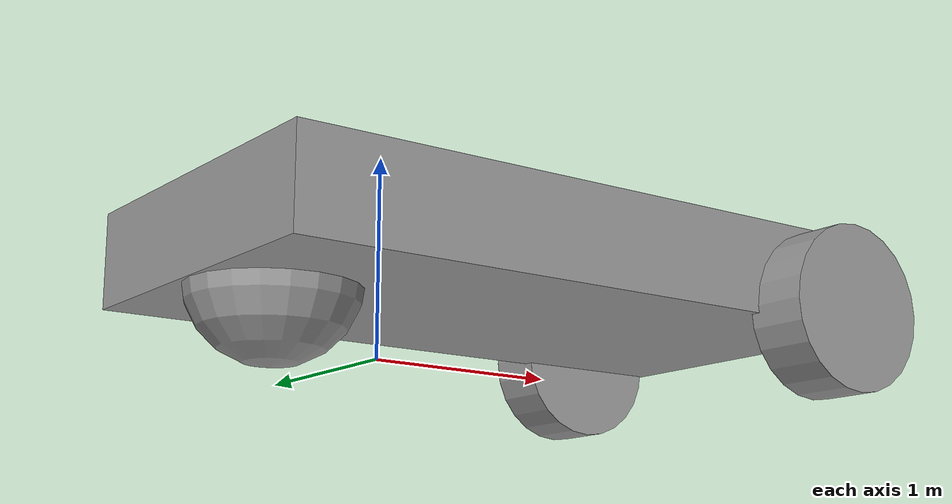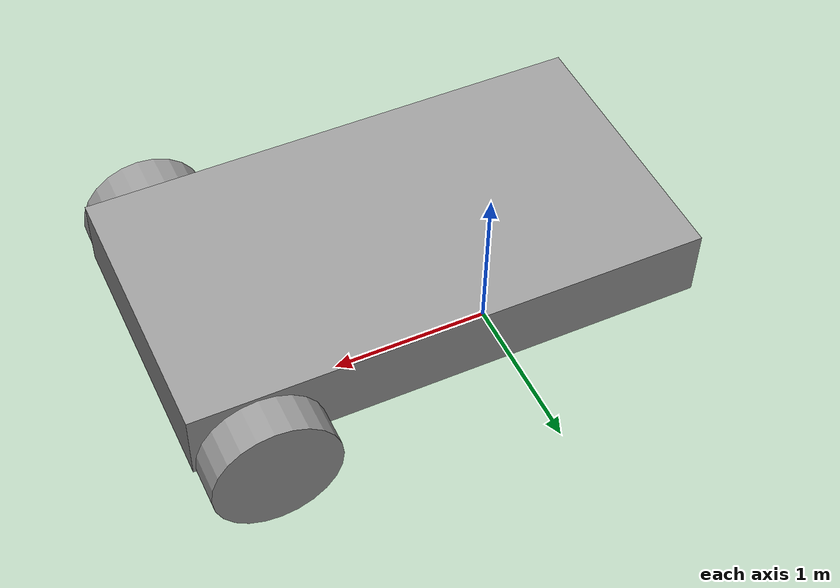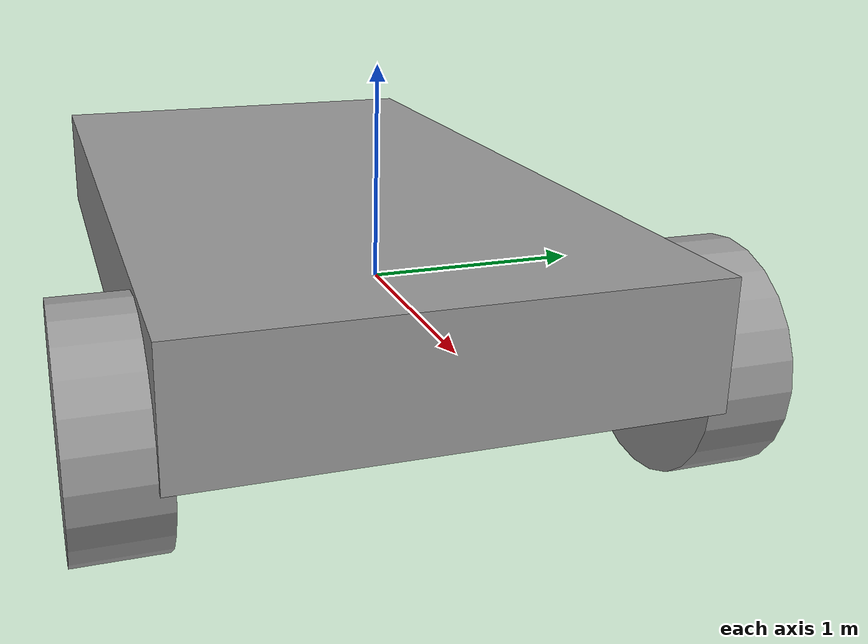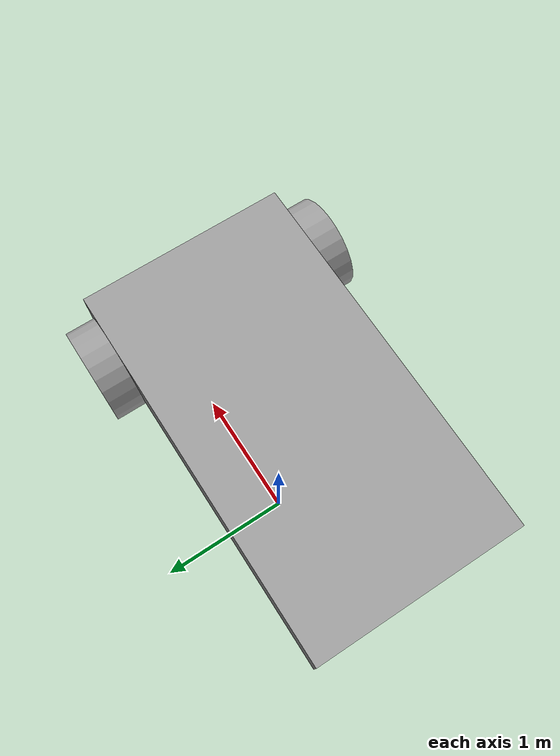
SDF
<?xml version='1.0'?>
<sdf version='1.6'>
  <model name='vehicle'>
    <link name='link_0'>
      <pose frame=''>0.442879 -0.41526 0.4 1.4e-05 -0 -2e-06</pose>
      <inertial>
        <mass>2.62404</mass>
        <inertia>
          <ixx>0.732575</ixx>
          <ixy>0</ixy>
          <ixz>0</ixz>
          <iyy>2.36995</iyy>
          <iyz>0</iyz>
          <izz>3.01245</izz>
        </inertia>
        <pose frame=''>0 0 0 0 -0 0</pose>
      </inertial>
      <gravity>1</gravity>
      <self_collide>0</self_collide>
      <kinematic>0</kinematic>
      <visual name='visual'>
        <pose frame=''>0 0 0 0 -0 0</pose>
        <geometry>
          <box>
            <size>3.26071 1.77323 0.453831</size>
          </box>
        </geometry>
        <material>
          <lighting>1</lighting>
          <script>
            <uri>file://media/materials/scripts/gazebo.material</uri>
            <name>Gazebo/Grey</name>
          </script>
          <ambient>0.3 0.3 0.3 1</ambient>
          <diffuse>0.7 0.7 0.7 1</diffuse>
          <specular>0.01 0.01 0.01 1</specular>
          <emissive>0 0 0 1</emissive>
          <shader type='vertex'>
            <normal_map>__default__</normal_map>
          </shader>
        </material>
        <cast_shadows>1</cast_shadows>
        <transparency>0</transparency>
      </visual>
      <collision name='collision'>
        <laser_retro>0</laser_retro>
        <max_contacts>10</max_contacts>
        <pose frame=''>0 0 0 0 -0 0</pose>
        <geometry>
          <box>
            <size>3.26071 1.77323 0.453831</size>
          </box>
        </geometry>
        <surface>
          <friction>
            <ode>
              <mu>1</mu>
              <mu2>1</mu2>
              <fdir1>0 0 0</fdir1>
              <slip1>0</slip1>
              <slip2>0</slip2>
            </ode>
            <torsional>
              <coefficient>1</coefficient>
              <patch_radius>0</patch_radius>
              <surface_radius>0</surface_radius>
              <use_patch_radius>1</use_patch_radius>
              <ode>
                <slip>0</slip>
              </ode>
            </torsional>
          </friction>
          <bounce>
            <restitution_coefficient>0</restitution_coefficient>
            <threshold>1e+06</threshold>
          </bounce>
          <contact>
            <collide_without_contact>0</collide_without_contact>
            <collide_without_contact_bitmask>1</collide_without_contact_bitmask>
            <collide_bitmask>1</collide_bitmask>
            <ode>
              <soft_cfm>0</soft_cfm>
              <soft_erp>0.2</soft_erp>
              <kp>1e+13</kp>
              <kd>1</kd>
              <max_vel>0.01</max_vel>
              <min_depth>0</min_depth>
            </ode>
            <bullet>
              <split_impulse>1</split_impulse>
              <split_impulse_penetration_threshold>-0.01</split_impulse_penetration_threshold>
              <soft_cfm>0</soft_cfm>
              <soft_erp>0.2</soft_erp>
              <kp>1e+13</kp>
              <kd>1</kd>
            </bullet>
          </contact>
        </surface>
      </collision>
    </link>
    <link name='link_1_clone'>
      <pose frame=''>1.65585 -1.40537 0.206219 1.57071 -0 -4e-06</pose>
      <inertial>
        <mass>0.144244</mass>
        <inertia>
          <ixx>0.00679725</ixx>
          <ixy>0</ixy>
          <ixz>0</ixz>
          <iyy>0.00679725</iyy>
          <iyz>0</iyz>
          <izz>0.0125644</izz>
        </inertia>
        <pose frame=''>0 0 0 0 -0 0</pose>
      </inertial>
      <self_collide>0</self_collide>
      <kinematic>0</kinematic>
      <gravity>1</gravity>
      <visual name='visual'>
        <pose frame=''>0 0 0 0 -0 0</pose>
        <geometry>
          <cylinder>
            <radius>0.4</radius>
            <length>0.3</length>
          </cylinder>
        </geometry>
        <material>
          <lighting>1</lighting>
          <script>
            <uri>file://media/materials/scripts/gazebo.material</uri>
            <name>Gazebo/Grey</name>
          </script>
          <ambient>0.3 0.3 0.3 1</ambient>
          <diffuse>0.7 0.7 0.7 1</diffuse>
          <specular>0.01 0.01 0.01 1</specular>
          <emissive>0 0 0 1</emissive>
          <shader type='vertex'>
            <normal_map>__default__</normal_map>
          </shader>
        </material>
        <cast_shadows>1</cast_shadows>
        <transparency>0</transparency>
      </visual>
      <collision name='collision'>
        <laser_retro>0</laser_retro>
        <max_contacts>10</max_contacts>
        <pose frame=''>0 0 0 0 -0 0</pose>
        <geometry>
          <cylinder>
            <radius>0.4</radius>
            <length>0.3</length>
          </cylinder>
        </geometry>
        <surface>
          <friction>
            <ode>
              <mu>1</mu>
              <mu2>1</mu2>
              <fdir1>0 0 0</fdir1>
              <slip1>0</slip1>
              <slip2>0</slip2>
            </ode>
            <torsional>
              <coefficient>1</coefficient>
              <patch_radius>0</patch_radius>
              <surface_radius>0</surface_radius>
              <use_patch_radius>1</use_patch_radius>
              <ode>
                <slip>0</slip>
              </ode>
            </torsional>
          </friction>
          <bounce>
            <restitution_coefficient>0</restitution_coefficient>
            <threshold>1e+06</threshold>
          </bounce>
          <contact>
            <collide_without_contact>0</collide_without_contact>
            <collide_without_contact_bitmask>1</collide_without_contact_bitmask>
            <collide_bitmask>1</collide_bitmask>
            <ode>
              <soft_cfm>0</soft_cfm>
              <soft_erp>0.2</soft_erp>
              <kp>1e+13</kp>
              <kd>1</kd>
              <max_vel>0.01</max_vel>
              <min_depth>0</min_depth>
            </ode>
            <bullet>
              <split_impulse>1</split_impulse>
              <split_impulse_penetration_threshold>-0.01</split_impulse_penetration_threshold>
              <soft_cfm>0</soft_cfm>
              <soft_erp>0.2</soft_erp>
              <kp>1e+13</kp>
              <kd>1</kd>
            </bullet>
          </contact>
        </surface>
      </collision>
    </link>
    <link name='link_1_clone_clone'>
      <pose frame=''>1.65585 0.574845 0.206213 1.57072 0 -6e-06</pose>
      <inertial>
        <mass>0.144244</mass>
        <inertia>
          <ixx>0.00679725</ixx>
          <ixy>0</ixy>
          <ixz>0</ixz>
          <iyy>0.00679725</iyy>
          <iyz>0</iyz>
          <izz>0.0125644</izz>
        </inertia>
        <pose frame=''>0 0 0 0 -0 0</pose>
      </inertial>
      <self_collide>0</self_collide>
      <kinematic>0</kinematic>
      <gravity>1</gravity>
      <visual name='visual'>
        <pose frame=''>0 0 0 0 -0 0</pose>
        <geometry>
          <cylinder>
            <radius>0.4</radius>
            <length>0.3</length>
          </cylinder>
        </geometry>
        <material>
          <lighting>1</lighting>
          <script>
            <uri>file://media/materials/scripts/gazebo.material</uri>
            <name>Gazebo/Grey</name>
          </script>
          <ambient>0.3 0.3 0.3 1</ambient>
          <diffuse>0.7 0.7 0.7 1</diffuse>
          <specular>0.01 0.01 0.01 1</specular>
          <emissive>0 0 0 1</emissive>
          <shader type='vertex'>
            <normal_map>__default__</normal_map>
          </shader>
        </material>
        <cast_shadows>1</cast_shadows>
        <transparency>0</transparency>
      </visual>
      <collision name='collision'>
        <laser_retro>0</laser_retro>
        <max_contacts>10</max_contacts>
        <pose frame=''>0 0 0 0 -0 0</pose>
        <geometry>
          <cylinder>
            <radius>0.4</radius>
            <length>0.3</length>
          </cylinder>
        </geometry>
        <surface>
          <friction>
            <ode>
              <mu>1</mu>
              <mu2>1</mu2>
              <fdir1>0 0 0</fdir1>
              <slip1>0</slip1>
              <slip2>0</slip2>
            </ode>
            <torsional>
              <coefficient>1</coefficient>
              <patch_radius>0</patch_radius>
              <surface_radius>0</surface_radius>
              <use_patch_radius>1</use_patch_radius>
              <ode>
                <slip>0</slip>
              </ode>
            </torsional>
          </friction>
          <bounce>
            <restitution_coefficient>0</restitution_coefficient>
            <threshold>1e+06</threshold>
          </bounce>
          <contact>
            <collide_without_contact>0</collide_without_contact>
            <collide_without_contact_bitmask>1</collide_without_contact_bitmask>
            <collide_bitmask>1</collide_bitmask>
            <ode>
              <soft_cfm>0</soft_cfm>
              <soft_erp>0.2</soft_erp>
              <kp>1e+13</kp>
              <kd>1</kd>
              <max_vel>0.01</max_vel>
              <min_depth>0</min_depth>
            </ode>
            <bullet>
              <split_impulse>1</split_impulse>
              <split_impulse_penetration_threshold>-0.01</split_impulse_penetration_threshold>
              <soft_cfm>0</soft_cfm>
              <soft_erp>0.2</soft_erp>
              <kp>1e+13</kp>
              <kd>1</kd>
            </bullet>
          </contact>
        </surface>
      </collision>
    </link>
    <link name='link_2'>
      <pose frame=''>-0.787477 -0.415256 0.226915 1.4e-05 -0 -2e-06</pose>
      <inertial>
        <mass>1</mass>
        <inertia>
          <ixx>0.1</ixx>
          <ixy>0</ixy>
          <ixz>0</ixz>
          <iyy>0.1</iyy>
          <iyz>0</iyz>
          <izz>0.1</izz>
        </inertia>
        <pose frame=''>0 0 0 0 -0 0</pose>
      </inertial>
      <gravity>1</gravity>
      <self_collide>0</self_collide>
      <kinematic>0</kinematic>
      <visual name='visual'>
        <pose frame=''>0 0 0 0 -0 0</pose>
        <geometry>
          <sphere>
            <radius>0.4</radius>
          </sphere>
        </geometry>
        <material>
          <lighting>1</lighting>
          <script>
            <uri>file://media/materials/scripts/gazebo.material</uri>
            <name>Gazebo/Grey</name>
          </script>
          <ambient>0.3 0.3 0.3 1</ambient>
          <diffuse>0.7 0.7 0.7 1</diffuse>
          <specular>0.01 0.01 0.01 1</specular>
          <emissive>0 0 0 1</emissive>
          <shader type='vertex'>
            <normal_map>__default__</normal_map>
          </shader>
        </material>
        <cast_shadows>1</cast_shadows>
        <transparency>0</transparency>
      </visual>
      <collision name='collision'>
        <laser_retro>0</laser_retro>
        <max_contacts>10</max_contacts>
        <pose frame=''>0 0 0 0 -0 0</pose>
        <geometry>
          <sphere>
            <radius>0.4</radius>
          </sphere>
        </geometry>
        <surface>
          <friction>
            <ode>
              <mu>1</mu>
              <mu2>1</mu2>
              <fdir1>0 0 0</fdir1>
              <slip1>0</slip1>
              <slip2>0</slip2>
            </ode>
            <torsional>
              <coefficient>1</coefficient>
              <patch_radius>0</patch_radius>
              <surface_radius>0</surface_radius>
              <use_patch_radius>1</use_patch_radius>
              <ode>
                <slip>0</slip>
              </ode>
            </torsional>
          </friction>
          <bounce>
            <restitution_coefficient>0</restitution_coefficient>
            <threshold>1e+06</threshold>
          </bounce>
          <contact>
            <collide_without_contact>0</collide_without_contact>
            <collide_without_contact_bitmask>1</collide_without_contact_bitmask>
            <collide_bitmask>1</collide_bitmask>
            <ode>
              <soft_cfm>0</soft_cfm>
              <soft_erp>0.2</soft_erp>
              <kp>1e+13</kp>
              <kd>1</kd>
              <max_vel>0.01</max_vel>
              <min_depth>0</min_depth>
            </ode>
            <bullet>
              <split_impulse>1</split_impulse>
              <split_impulse_penetration_threshold>-0.01</split_impulse_penetration_threshold>
              <soft_cfm>0</soft_cfm>
              <soft_erp>0.2</soft_erp>
              <kp>1e+13</kp>
              <kd>1</kd>
            </bullet>
          </contact>
        </surface>
      </collision>
    </link>
    <joint name='link_0_JOINT_1' type='revolute'>
      <parent>link_0</parent>
      <child>link_1_clone_clone</child>
      <pose frame=''>0 0 0 0 -0 0</pose>
      <axis>
        <xyz>0 0 1</xyz>
        <use_parent_model_frame>0</use_parent_model_frame>
        <limit>
          <lower>-1.79769e+308</lower>
          <upper>1.79769e+308</upper>
          <effort>-1</effort>
          <velocity>-1</velocity>
        </limit>
        <dynamics>
          <spring_reference>0</spring_reference>
          <spring_stiffness>0</spring_stiffness>
          <damping>0</damping>
        </dynamics>
      </axis>
      <physics>
        <ode>
          <limit>
            <cfm>0</cfm>
            <erp>0.2</erp>
          </limit>
          <suspension>
            <cfm>0</cfm>
            <erp>0.2</erp>
          </suspension>
        </ode>
      </physics>
    </joint>
    <joint name='link_0_JOINT_2' type='revolute'>
      <parent>link_0</parent>
      <child>link_1_clone</child>
      <pose frame=''>0 0 0 0 -0 0</pose>
      <axis>
        <xyz>0 0 1</xyz>
        <use_parent_model_frame>0</use_parent_model_frame>
        <limit>
          <lower>-1.79769e+308</lower>
          <upper>1.79769e+308</upper>
          <effort>-1</effort>
          <velocity>-1</velocity>
        </limit>
        <dynamics>
          <spring_reference>0</spring_reference>
          <spring_stiffness>0</spring_stiffness>
          <damping>0</damping>
        </dynamics>
      </axis>
      <physics>
        <ode>
          <limit>
            <cfm>0</cfm>
            <erp>0.2</erp>
          </limit>
          <suspension>
            <cfm>0</cfm>
            <erp>0.2</erp>
          </suspension>
        </ode>
      </physics>
    </joint>
    <joint name='link_0_JOINT_3' type='ball'>
      <parent>link_0</parent>
      <child>link_2</child>
      <pose frame=''>0 0 0 0 -0 0</pose>
      <physics>
        <ode>
          <limit>
            <cfm>0</cfm>
            <erp>0.2</erp>
          </limit>
          <suspension>
            <cfm>0</cfm>
            <erp>0.2</erp>
          </suspension>
        </ode>
      </physics>
    </joint>
    <static>0</static>
    <allow_auto_disable>1</allow_auto_disable>
  </model>
</sdf>
